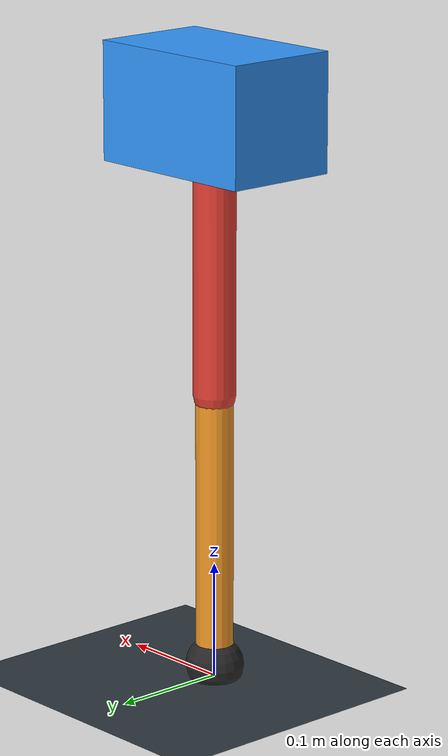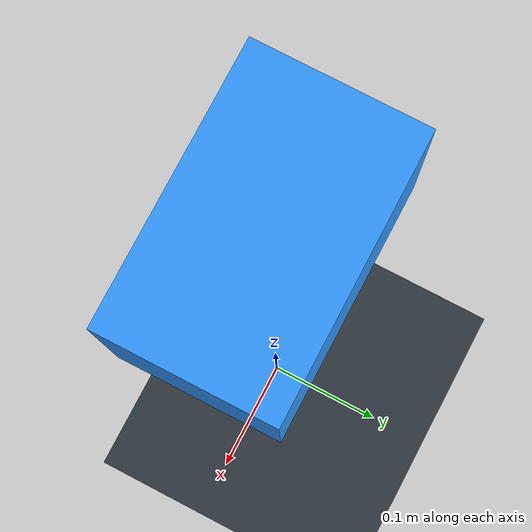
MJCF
<mujoco model="single_axis_two_bar">
  <compiler angle="radian" inertiafromgeom="true"/>
  <option timestep="0.001" integrator="implicitfast" gravity="0 0 -9.81"/>
  <default>
    <joint damping="0.08"/>
    <geom friction="1.2 0.01 0.0001" condim="3"/>
  </default>
  <worldbody>
    <geom name="floor" type="plane" size="5 5 0.1" rgba="0.18 0.22 0.25 1"/>
    <body name="carriage" pos="0 0 0.49031534846492847">
      <joint name="pole_slide" type="slide" axis="0 0 1"/>
      <geom name="payload" type="box" size="0.08 0.05 0.05" mass="3.2527211589262555" rgba="0.2 0.6 1 1"/>
      <body name="thigh" pos="0 0 0">
        <joint name="hip" type="hinge" axis="0 1 0"/>
        <geom name="thigh_link" type="capsule" fromto="0 0 0 0 0 -0.24262444561884688" size="0.018" mass="0.17287312350261722" rgba="0.9 0.25 0.2 1"/>
        <body name="shank" pos="0 0 -0.24262444561884688">
          <joint name="knee" type="hinge" axis="0 1 0"/>
          <geom name="shank_link" type="capsule" fromto="0 0 0 0 0 -0.23708209919035775" size="0.016" mass="0.1689241284366721" rgba="0.95 0.6 0.15 1"/>
          <geom name="foot" type="sphere" pos="0 0 -0.23708209919035775" size="0.025" mass="0.03" rgba="0.15 0.15 0.15 1"/>
          <site name="toe" pos="0 0 -0.23708209919035775" size="0.008"/>
        </body>
      </body>
    </body>
  </worldbody>
  <actuator>
    <motor name="hip_motor" joint="hip" ctrlrange="-46.42872234287118 46.42872234287118"/>
    <motor name="knee_motor" joint="knee" ctrlrange="-35.84930361676731 35.84930361676731"/>
  </actuator>
</mujoco>
